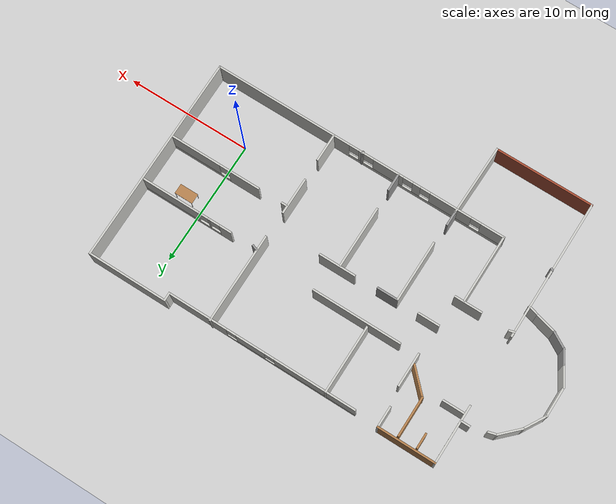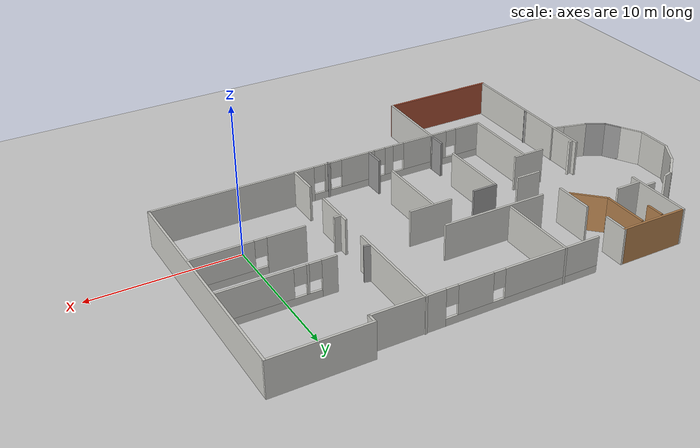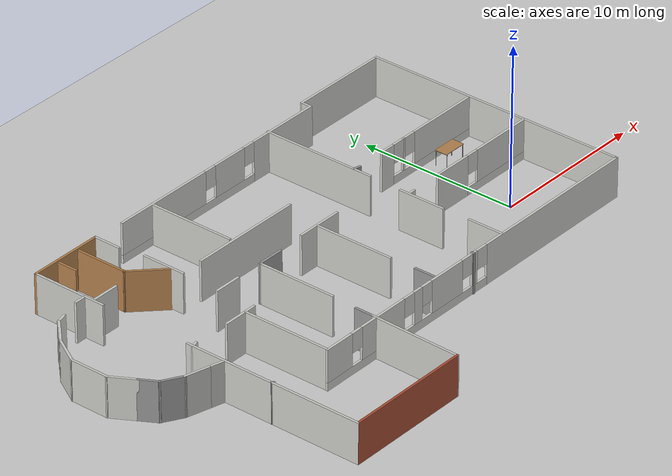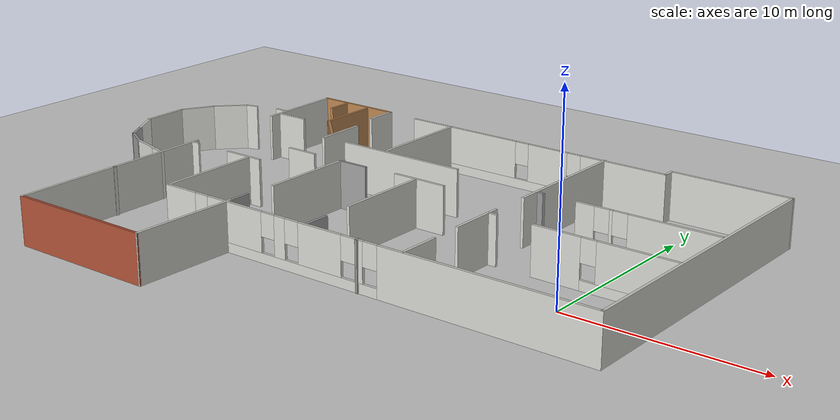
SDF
<sdf version="1.6">
 <world name="default">
  <light name="sun" type="directional">
   <pose>0 0 10 0 -0 0</pose>
   <diffuse>0.8 0.8 0.8 1</diffuse>
   <specular>0.2 0.2 0.2 1</specular>
   <attenuation>
    <range>1000</range>
    <constant>0.9</constant>
    <linear>0.01</linear>
    <quadratic>0.001</quadratic>
   </attenuation>
   <direction>-0.5 0.1 -0.9</direction>
  </light>
  <model name="ground_plane">
   <static>1</static>
   <link name="link">
    <collision name="collision">
     <geometry><plane><normal>0 0 1</normal><size>100 100</size></plane></geometry>
     <surface><friction><ode><mu>100</mu><mu2>50</mu2></ode></friction></surface>
    </collision>
    <visual name="visual">
     <cast_shadows>0</cast_shadows>
     <geometry><plane><normal>0 0 1</normal><size>100 100</size></plane></geometry>
     <material>
      <script><uri>file://media/materials/scripts/gazebo.material</uri><name>Gazebo/Grey</name></script>
     </material>
    </visual>
   </link>
  </model>
  <gravity>0 0 -9.8</gravity>
  <magnetic_field>6e-06 2.3e-05 -4.2e-05</magnetic_field>
  <atmosphere type="adiabatic"/>
  <physics name="default_physics" default="0" type="ode">
   <max_step_size>0.001</max_step_size>
   <real_time_factor>1</real_time_factor>
   <real_time_update_rate>1000</real_time_update_rate>
  </physics>
  <scene><ambient>0.4 0.4 0.4 1</ambient><background>0.7 0.7 0.7 1</background><shadows>1</shadows></scene>
  <spherical_coordinates>
   <surface_model>EARTH_WGS84</surface_model>
   <latitude_deg>0</latitude_deg>
   <longitude_deg>0</longitude_deg>
   <elevation>0</elevation>
   <heading_deg>0</heading_deg>
  </spherical_coordinates>
  <model name="MyHospital">
   <pose>-12.1204 1.93957 0 0 -0 0</pose>
   <link name="Wall_0">
    <collision name="Wall_0_Collision">
     <geometry><box><size>0.16 0.15 2.5</size></box></geometry>
     <pose>0 0 1.25 0 -0 0</pose>
    </collision>
    <visual name="Wall_0_Visual">
     <pose>0 0 1.25 0 -0 0</pose>
     <geometry><box><size>0.16 0.15 2.5</size></box></geometry>
     <material>
      <script><uri>file://media/materials/scripts/gazebo.material</uri><name>Gazebo/Grey</name></script>
      <ambient>1 1 1 1</ambient>
     </material>
     <meta><layer>0</layer></meta>
    </visual>
    <pose>16.5296 -5.60945 0 0 -0 0</pose>
   </link>
   <link name="Wall_1">
    <pose>4.48457 -5.60945 0 0 -0 3.14159</pose>
    <visual name="Wall_1_Visual_0">
     <pose>-6.49021 0 1.25 0 -0 0</pose>
     <geometry><box><size>11.2696 0.15 2.5</size></box></geometry>
     <material>
      <script><uri>file://media/materials/scripts/gazebo.material</uri><name>Gazebo/CeilingTiled</name></script>
      <ambient>1 1 1 1</ambient>
     </material>
     <meta><layer>0</layer></meta>
    </visual>
    <collision name="Wall_1_Collision_0">
     <geometry><box><size>11.2696 0.15 2.5</size></box></geometry>
     <pose>-6.49021 0 1.25 0 -0 0</pose>
    </collision>
    <visual name="Wall_1_Visual_1">
     <pose>5.63479 0 0.25 0 -0 0</pose>
     <geometry><box><size>12.9804 0.15 0.5</size></box></geometry>
     <material>
      <script><uri>file://media/materials/scripts/gazebo.material</uri><name>Gazebo/CeilingTiled</name></script>
      <ambient>1 1 1 1</ambient>
     </material>
     <meta><layer>0</layer></meta>
    </visual>
    <collision name="Wall_1_Collision_1">
     <geometry><box><size>12.9804 0.15 0.5</size></box></geometry>
     <pose>5.63479 0 0.25 0 -0 0</pose>
    </collision>
    <visual name="Wall_1_Visual_2">
     <pose>0.159855 0 1.5 0 -0 0</pose>
     <geometry><box><size>0.430557 0.15 2</size></box></geometry>
     <material>
      <script><uri>file://media/materials/scripts/gazebo.material</uri><name>Gazebo/CeilingTiled</name></script>
      <ambient>1 1 1 1</ambient>
     </material>
     <meta><layer>0</layer></meta>
    </visual>
    <collision name="Wall_1_Collision_2">
     <geometry><box><size>0.430557 0.15 2</size></box></geometry>
     <pose>0.159855 0 1.5 0 -0 0</pose>
    </collision>
    <visual name="Wall_1_Visual_3">
     <pose>2.43371 0 1.5 0 -0 0</pose>
     <geometry><box><size>2.51715 0.15 2</size></box></geometry>
     <material>
      <script><uri>file://media/materials/scripts/gazebo.material</uri><name>Gazebo/CeilingTiled</name></script>
      <ambient>1 1 1 1</ambient>
     </material>
     <meta><layer>0</layer></meta>
    </visual>
    <collision name="Wall_1_Collision_3">
     <geometry><box><size>2.51715 0.15 2</size></box></geometry>
     <pose>2.43371 0 1.5 0 -0 0</pose>
    </collision>
    <visual name="Wall_1_Visual_4">
     <pose>4.81457 0 1.5 0 -0 0</pose>
     <geometry><box><size>0.644567 0.15 2</size></box></geometry>
     <material>
      <script><uri>file://media/materials/scripts/gazebo.material</uri><name>Gazebo/CeilingTiled</name></script>
      <ambient>1 1 1 1</ambient>
     </material>
     <meta><layer>0</layer></meta>
    </visual>
    <collision name="Wall_1_Collision_4">
     <geometry><box><size>0.644567 0.15 2</size></box></geometry>
     <pose>4.81457 0 1.5 0 -0 0</pose>
    </collision>
    <visual name="Wall_1_Visual_5">
     <pose>7.6502 0 1.5 0 -0 0</pose>
     <geometry><box><size>3.4267 0.15 2</size></box></geometry>
     <material>
      <script><uri>file://media/materials/scripts/gazebo.material</uri><name>Gazebo/CeilingTiled</name></script>
      <ambient>1 1 1 1</ambient>
     </material>
     <meta><layer>0</layer></meta>
    </visual>
    <collision name="Wall_1_Collision_5">
     <geometry><box><size>3.4267 0.15 2</size></box></geometry>
     <pose>7.6502 0 1.5 0 -0 0</pose>
    </collision>
    <visual name="Wall_1_Visual_6">
     <pose>11.1443 0 1.5 0 -0 0</pose>
     <geometry><box><size>1.96145 0.15 2</size></box></geometry>
     <material>
      <script><uri>file://media/materials/scripts/gazebo.material</uri><name>Gazebo/CeilingTiled</name></script>
      <ambient>1 1 1 1</ambient>
     </material>
     <meta><layer>0</layer></meta>
    </visual>
    <collision name="Wall_1_Collision_6">
     <geometry><box><size>1.96145 0.15 2</size></box></geometry>
     <pose>11.1443 0 1.5 0 -0 0</pose>
    </collision>
    <visual name="Wall_1_Visual_7">
     <pose>-0.455423 0 1.9 0 -0 0</pose>
     <geometry><box><size>0.8 0.15 1.2</size></box></geometry>
     <material>
      <script><uri>file://media/materials/scripts/gazebo.material</uri><name>Gazebo/CeilingTiled</name></script>
      <ambient>1 1 1 1</ambient>
     </material>
     <meta><layer>0</layer></meta>
    </visual>
    <collision name="Wall_1_Collision_7">
     <geometry><box><size>0.8 0.15 1.2</size></box></geometry>
     <pose>-0.455423 0 1.9 0 -0 0</pose>
    </collision>
    <visual name="Wall_1_Visual_8">
     <pose>0.775134 0 1.9 0 -0 0</pose>
     <geometry><box><size>0.8 0.15 1.2</size></box></geometry>
     <material>
      <script><uri>file://media/materials/scripts/gazebo.material</uri><name>Gazebo/CeilingTiled</name></script>
      <ambient>1 1 1 1</ambient>
     </material>
     <meta><layer>0</layer></meta>
    </visual>
    <collision name="Wall_1_Collision_8">
     <geometry><box><size>0.8 0.15 1.2</size></box></geometry>
     <pose>0.775134 0 1.9 0 -0 0</pose>
    </collision>
    <visual name="Wall_1_Visual_9">
     <pose>4.09229 0 1.9 0 -0 0</pose>
     <geometry><box><size>0.8 0.15 1.2</size></box></geometry>
     <material>
      <script><uri>file://media/materials/scripts/gazebo.material</uri><name>Gazebo/CeilingTiled</name></script>
      <ambient>1 1 1 1</ambient>
     </material>
     <meta><layer>0</layer></meta>
    </visual>
    <collision name="Wall_1_Collision_9">
     <geometry><box><size>0.8 0.15 1.2</size></box></geometry>
     <pose>4.09229 0 1.9 0 -0 0</pose>
    </collision>
    <visual name="Wall_1_Visual_10">
     <pose>5.53686 0 1.9 0 -0 0</pose>
     <geometry><box><size>0.8 0.15 1.2</size></box></geometry>
     <material>
      <script><uri>file://media/materials/scripts/gazebo.material</uri><name>Gazebo/CeilingTiled</name></script>
      <ambient>1 1 1 1</ambient>
     </material>
     <meta><layer>0</layer></meta>
    </visual>
    <collision name="Wall_1_Collision_10">
     <geometry><box><size>0.8 0.15 1.2</size></box></geometry>
     <pose>5.53686 0 1.9 0 -0 0</pose>
    </collision>
    <visual name="Wall_1_Visual_11">
     <pose>9.76355 0 1.9 0 -0 0</pose>
     <geometry><box><size>0.8 0.15 1.2</size></box></geometry>
     <material>
      <script><uri>file://media/materials/scripts/gazebo.material</uri><name>Gazebo/CeilingTiled</name></script>
      <ambient>1 1 1 1</ambient>
     </material>
     <meta><layer>0</layer></meta>
    </visual>
    <collision name="Wall_1_Collision_11">
     <geometry><box><size>0.8 0.15 1.2</size></box></geometry>
     <pose>9.76355 0 1.9 0 -0 0</pose>
    </collision>
   </link>
   <link name="Wall_14">
    <collision name="Wall_14_Collision">
     <geometry><box><size>5.5 0.15 2.5</size></box></geometry>
     <pose>0 0 1.25 0 -0 0</pose>
    </collision>
    <visual name="Wall_14_Visual">
     <pose>0 0 1.25 0 -0 0</pose>
     <geometry><box><size>5.5 0.15 2.5</size></box></geometry>
     <material>
      <script><uri>file://media/materials/scripts/gazebo.material</uri><name>Gazebo/CeilingTiled</name></script>
      <ambient>1 1 1 1</ambient>
     </material>
     <meta><layer>0</layer></meta>
    </visual>
    <pose>-7.54648 -2.8414 0 0 -0 1.5708</pose>
   </link>
   <link name="Wall_16">
    <collision name="Wall_16_Collision">
     <geometry><box><size>2.25 0.15 2.5</size></box></geometry>
     <pose>0 0 1.25 0 -0 0</pose>
    </collision>
    <visual name="Wall_16_Visual">
     <pose>0 0 1.25 0 -0 0</pose>
     <geometry><box><size>2.25 0.15 2.5</size></box></geometry>
     <material>
      <script><uri>file://media/materials/scripts/gazebo.material</uri><name>Gazebo/CeilingTiled</name></script>
      <ambient>1 1 1 1</ambient>
     </material>
     <meta><layer>0</layer></meta>
    </visual>
    <pose>-7.92696 -0.119625 0 0 -0 3.14159</pose>
   </link>
   <link name="Wall_18">
    <collision name="Wall_18_Collision">
     <geometry><box><size>2.25 0.15 2.5</size></box></geometry>
     <pose>0 0 1.25 0 -0 0</pose>
    </collision>
    <visual name="Wall_18_Visual">
     <pose>0 0 1.25 0 -0 0</pose>
     <geometry><box><size>2.25 0.15 2.5</size></box></geometry>
     <material>
      <script><uri>file://media/materials/scripts/gazebo.material</uri><name>Gazebo/CeilingTiled</name></script>
      <ambient>1 1 1 1</ambient>
     </material>
     <meta><layer>0</layer></meta>
    </visual>
    <pose>6.68381 -4.49275 0 0 -0 1.5708</pose>
   </link>
   <link name="Wall_20">
    <collision name="Wall_20_Collision">
     <geometry><box><size>3 0.15 2.5</size></box></geometry>
     <pose>0 0 1.25 0 -0 0</pose>
    </collision>
    <visual name="Wall_20_Visual">
     <pose>0 0 1.25 0 -0 0</pose>
     <geometry><box><size>3 0.15 2.5</size></box></geometry>
     <material>
      <script><uri>file://media/materials/scripts/gazebo.material</uri><name>Gazebo/CeilingTiled</name></script>
      <ambient>1 1 1 1</ambient>
     </material>
     <meta><layer>0</layer></meta>
    </visual>
    <pose>6.64336 -0.234016 0 0 -0 1.5708</pose>
   </link>
   <link name="Wall_22">
    <collision name="Wall_22_Collision">
     <geometry><box><size>0.5 0.15 2.5</size></box></geometry>
     <pose>0 0 1.25 0 -0 0</pose>
    </collision>
    <visual name="Wall_22_Visual">
     <pose>0 0 1.25 0 -0 0</pose>
     <geometry><box><size>0.5 0.15 2.5</size></box></geometry>
     <material>
      <script><uri>file://media/materials/scripts/gazebo.material</uri><name>Gazebo/CeilingTiled</name></script>
      <ambient>1 1 1 1</ambient>
     </material>
     <meta><layer>0</layer></meta>
    </visual>
    <pose>6.89927 0.646952 0 0 -0 0</pose>
   </link>
   <link name="Wall_26">
    <pose>12.7912 0.646952 0 0 -0 0</pose>
    <visual name="Wall_26_Visual_0">
     <pose>-2.46946 0 1.25 0 -0 0</pose>
     <geometry><box><size>2.56108 0.15 2.5</size></box></geometry>
     <material>
      <script><uri>file://media/materials/scripts/gazebo.material</uri><name>Gazebo/CeilingTiled</name></script>
      <ambient>1 1 1 1</ambient>
     </material>
     <meta><layer>0</layer></meta>
    </visual>
    <collision name="Wall_26_Collision_0">
     <geometry><box><size>2.56108 0.15 2.5</size></box></geometry>
     <pose>-2.46946 0 1.25 0 -0 0</pose>
    </collision>
    <visual name="Wall_26_Visual_1">
     <pose>1.28054 0 0.25 0 -0 0</pose>
     <geometry><box><size>4.93892 0.15 0.5</size></box></geometry>
     <material>
      <script><uri>file://media/materials/scripts/gazebo.material</uri><name>Gazebo/CeilingTiled</name></script>
      <ambient>1 1 1 1</ambient>
     </material>
     <meta><layer>0</layer></meta>
    </visual>
    <collision name="Wall_26_Collision_1">
     <geometry><box><size>4.93892 0.15 0.5</size></box></geometry>
     <pose>1.28054 0 0.25 0 -0 0</pose>
    </collision>
    <visual name="Wall_26_Visual_2">
     <pose>1.68054 0 1.5 0 -0 0</pose>
     <geometry><box><size>4.13892 0.15 2</size></box></geometry>
     <material>
      <script><uri>file://media/materials/scripts/gazebo.material</uri><name>Gazebo/CeilingTiled</name></script>
      <ambient>1 1 1 1</ambient>
     </material>
     <meta><layer>0</layer></meta>
    </visual>
    <collision name="Wall_26_Collision_2">
     <geometry><box><size>4.13892 0.15 2</size></box></geometry>
     <pose>1.68054 0 1.5 0 -0 0</pose>
    </collision>
    <visual name="Wall_26_Visual_3">
     <pose>-0.788924 0 1.9 0 -0 0</pose>
     <geometry><box><size>0.8 0.15 1.2</size></box></geometry>
     <material>
      <script><uri>file://media/materials/scripts/gazebo.material</uri><name>Gazebo/CeilingTiled</name></script>
      <ambient>1 1 1 1</ambient>
     </material>
     <meta><layer>0</layer></meta>
    </visual>
    <collision name="Wall_26_Collision_3">
     <geometry><box><size>0.8 0.15 1.2</size></box></geometry>
     <pose>-0.788924 0 1.9 0 -0 0</pose>
    </collision>
   </link>
   <link name="Wall_28">
    <collision name="Wall_28_Collision">
     <geometry><box><size>16.75 0.15 2.5</size></box></geometry>
     <pose>0 0 1.25 0 -0 0</pose>
    </collision>
    <visual name="Wall_28_Visual">
     <pose>0 0 1.25 0 -0 0</pose>
     <geometry><box><size>16.75 0.15 2.5</size></box></geometry>
     <material>
      <script><uri>file://media/materials/scripts/gazebo.material</uri><name>Gazebo/CeilingTiled</name></script>
      <ambient>1 1 1 1</ambient>
     </material>
     <meta><layer>0</layer></meta>
    </visual>
    <pose>16.5346 2.69055 0 0 -0 1.5708</pose>
   </link>
   <link name="Wall_29">
    <collision name="Wall_29_Collision">
     <geometry><box><size>6.5 0.15 2.5</size></box></geometry>
     <pose>0 0 1.25 0 -0 0</pose>
    </collision>
    <visual name="Wall_29_Visual">
     <pose>0 0 1.25 0 -0 0</pose>
     <geometry><box><size>6.5 0.15 2.5</size></box></geometry>
     <material>
      <script><uri>file://media/materials/scripts/gazebo.material</uri><name>Gazebo/CeilingTiled</name></script>
      <ambient>1 1 1 1</ambient>
     </material>
     <meta><layer>0</layer></meta>
    </visual>
    <pose>13.3596 10.9906 0 0 -0 3.14159</pose>
   </link>
   <link name="Wall_30">
    <collision name="Wall_30_Collision">
     <geometry><box><size>0.75 0.15 2.5</size></box></geometry>
     <pose>0 0 1.25 0 -0 0</pose>
    </collision>
    <visual name="Wall_30_Visual">
     <pose>0 0 1.25 0 -0 0</pose>
     <geometry><box><size>0.75 0.15 2.5</size></box></geometry>
     <material>
      <script><uri>file://media/materials/scripts/gazebo.material</uri><name>Gazebo/CeilingTiled</name></script>
      <ambient>1 1 1 1</ambient>
     </material>
     <meta><layer>0</layer></meta>
    </visual>
    <pose>10.1846 10.6906 0 0 0 -1.5708</pose>
   </link>
   <link name="Wall_31">
    <pose>2.50957 10.3906 0 0 -0 3.14159</pose>
    <visual name="Wall_31_Visual_0">
     <pose>-5.31696 0 1.25 0 -0 0</pose>
     <geometry><box><size>4.86607 0.15 2.5</size></box></geometry>
     <material>
      <script><uri>file://media/materials/scripts/gazebo.material</uri><name>Gazebo/CeilingTiled</name></script>
      <ambient>1 1 1 1</ambient>
     </material>
     <meta><layer>0</layer></meta>
    </visual>
    <collision name="Wall_31_Collision_0">
     <geometry><box><size>4.86607 0.15 2.5</size></box></geometry>
     <pose>-5.31696 0 1.25 0 -0 0</pose>
    </collision>
    <visual name="Wall_31_Visual_1">
     <pose>2.43304 0 0.25 0 -0 0</pose>
     <geometry><box><size>10.6339 0.15 0.5</size></box></geometry>
     <material>
      <script><uri>file://media/materials/scripts/gazebo.material</uri><name>Gazebo/CeilingTiled</name></script>
      <ambient>1 1 1 1</ambient>
     </material>
     <meta><layer>0</layer></meta>
    </visual>
    <collision name="Wall_31_Collision_1">
     <geometry><box><size>10.6339 0.15 0.5</size></box></geometry>
     <pose>2.43304 0 0.25 0 -0 0</pose>
    </collision>
    <visual name="Wall_31_Visual_2">
     <pose>-0.905602 0 1.5 0 -0 0</pose>
     <geometry><box><size>2.35665 0.15 2</size></box></geometry>
     <material>
      <script><uri>file://media/materials/scripts/gazebo.material</uri><name>Gazebo/CeilingTiled</name></script>
      <ambient>1 1 1 1</ambient>
     </material>
     <meta><layer>0</layer></meta>
    </visual>
    <collision name="Wall_31_Collision_2">
     <geometry><box><size>2.35665 0.15 2</size></box></geometry>
     <pose>-0.905602 0 1.5 0 -0 0</pose>
    </collision>
    <visual name="Wall_31_Visual_3">
     <pose>4.41136 0 1.5 0 -0 0</pose>
     <geometry><box><size>6.67728 0.15 2</size></box></geometry>
     <material>
      <script><uri>file://media/materials/scripts/gazebo.material</uri><name>Gazebo/CeilingTiled</name></script>
      <ambient>1 1 1 1</ambient>
     </material>
     <meta><layer>0</layer></meta>
    </visual>
    <collision name="Wall_31_Collision_3">
     <geometry><box><size>6.67728 0.15 2</size></box></geometry>
     <pose>4.41136 0 1.5 0 -0 0</pose>
    </collision>
    <visual name="Wall_31_Visual_4">
     <pose>-2.48393 0 1.9 0 -0 0</pose>
     <geometry><box><size>0.8 0.15 1.2</size></box></geometry>
     <material>
      <script><uri>file://media/materials/scripts/gazebo.material</uri><name>Gazebo/CeilingTiled</name></script>
      <ambient>1 1 1 1</ambient>
     </material>
     <meta><layer>0</layer></meta>
    </visual>
    <collision name="Wall_31_Collision_4">
     <geometry><box><size>0.8 0.15 1.2</size></box></geometry>
     <pose>-2.48393 0 1.9 0 -0 0</pose>
    </collision>
    <visual name="Wall_31_Visual_5">
     <pose>0.672721 0 1.9 0 -0 0</pose>
     <geometry><box><size>0.8 0.15 1.2</size></box></geometry>
     <material>
      <script><uri>file://media/materials/scripts/gazebo.material</uri><name>Gazebo/CeilingTiled</name></script>
      <ambient>1 1 1 1</ambient>
     </material>
     <meta><layer>0</layer></meta>
    </visual>
    <collision name="Wall_31_Collision_5">
     <geometry><box><size>0.8 0.15 1.2</size></box></geometry>
     <pose>0.672721 0 1.9 0 -0 0</pose>
    </collision>
   </link>
   <link name="Wall_33">
    <collision name="Wall_33_Collision">
     <geometry><box><size>7.25 0.15 2.5</size></box></geometry>
     <pose>0 0 1.25 0 -0 0</pose>
    </collision>
    <visual name="Wall_33_Visual">
     <pose>0 0 1.25 0 -0 0</pose>
     <geometry><box><size>7.25 0.15 2.5</size></box></geometry>
     <material>
      <script><uri>file://media/materials/scripts/gazebo.material</uri><name>Gazebo/CeilingTiled</name></script>
      <ambient>1 1 1 1</ambient>
     </material>
     <meta><layer>0</layer></meta>
    </visual>
    <pose>6.71211 6.90831 0 0 0 -1.5708</pose>
   </link>
   <link name="Wall_35">
    <collision name="Wall_35_Collision">
     <geometry><box><size>0.5 0.15 2.5</size></box></geometry>
     <pose>0 0 1.25 0 -0 0</pose>
    </collision>
    <visual name="Wall_35_Visual">
     <pose>0 0 1.25 0 -0 0</pose>
     <geometry><box><size>0.5 0.15 2.5</size></box></geometry>
     <material>
      <script><uri>file://media/materials/scripts/gazebo.material</uri><name>Gazebo/Grey</name></script>
      <ambient>1 1 1 1</ambient>
     </material>
     <meta><layer>0</layer></meta>
    </visual>
    <pose>6.93465 4.42074 0 0 0 -0.261799</pose>
   </link>
   <link name="Wall_39">
    <pose>12.6839 4.41253 0 0 -0 0</pose>
    <visual name="Wall_39_Visual_0">
     <pose>-3.24505 0 1.25 0 -0 0</pose>
     <geometry><box><size>1.00989 0.15 2.5</size></box></geometry>
     <material>
      <script><uri>file://media/materials/scripts/gazebo.material</uri><name>Gazebo/CeilingTiled</name></script>
      <ambient>1 1 1 1</ambient>
     </material>
     <meta><layer>0</layer></meta>
    </visual>
    <collision name="Wall_39_Collision_0">
     <geometry><box><size>1.00989 0.15 2.5</size></box></geometry>
     <pose>-3.24505 0 1.25 0 -0 0</pose>
    </collision>
    <visual name="Wall_39_Visual_1">
     <pose>0.504947 0 0.25 0 -0 0</pose>
     <geometry><box><size>6.49011 0.15 0.5</size></box></geometry>
     <material>
      <script><uri>file://media/materials/scripts/gazebo.material</uri><name>Gazebo/CeilingTiled</name></script>
      <ambient>1 1 1 1</ambient>
     </material>
     <meta><layer>0</layer></meta>
    </visual>
    <collision name="Wall_39_Collision_1">
     <geometry><box><size>6.49011 0.15 0.5</size></box></geometry>
     <pose>0.504947 0 0.25 0 -0 0</pose>
    </collision>
    <visual name="Wall_39_Visual_2">
     <pose>-1.85858 0 1.5 0 -0 0</pose>
     <geometry><box><size>0.163045 0.15 2</size></box></geometry>
     <material>
      <script><uri>file://media/materials/scripts/gazebo.material</uri><name>Gazebo/CeilingTiled</name></script>
      <ambient>1 1 1 1</ambient>
     </material>
     <meta><layer>0</layer></meta>
    </visual>
    <collision name="Wall_39_Collision_2">
     <geometry><box><size>0.163045 0.15 2</size></box></geometry>
     <pose>-1.85858 0 1.5 0 -0 0</pose>
    </collision>
    <visual name="Wall_39_Visual_3">
     <pose>1.38647 0 1.5 0 -0 0</pose>
     <geometry><box><size>4.72706 0.15 2</size></box></geometry>
     <material>
      <script><uri>file://media/materials/scripts/gazebo.material</uri><name>Gazebo/CeilingTiled</name></script>
      <ambient>1 1 1 1</ambient>
     </material>
     <meta><layer>0</layer></meta>
    </visual>
    <collision name="Wall_39_Collision_3">
     <geometry><box><size>4.72706 0.15 2</size></box></geometry>
     <pose>1.38647 0 1.5 0 -0 0</pose>
    </collision>
    <visual name="Wall_39_Visual_4">
     <pose>-2.34011 0 1.9 0 -0 0</pose>
     <geometry><box><size>0.8 0.15 1.2</size></box></geometry>
     <material>
      <script><uri>file://media/materials/scripts/gazebo.material</uri><name>Gazebo/CeilingTiled</name></script>
      <ambient>1 1 1 1</ambient>
     </material>
     <meta><layer>0</layer></meta>
    </visual>
    <collision name="Wall_39_Collision_4">
     <geometry><box><size>0.8 0.15 1.2</size></box></geometry>
     <pose>-2.34011 0 1.9 0 -0 0</pose>
    </collision>
    <visual name="Wall_39_Visual_5">
     <pose>-1.37706 0 1.9 0 -0 0</pose>
     <geometry><box><size>0.8 0.15 1.2</size></box></geometry>
     <material>
      <script><uri>file://media/materials/scripts/gazebo.material</uri><name>Gazebo/CeilingTiled</name></script>
      <ambient>1 1 1 1</ambient>
     </material>
     <meta><layer>0</layer></meta>
    </visual>
    <collision name="Wall_39_Collision_5">
     <geometry><box><size>0.8 0.15 1.2</size></box></geometry>
     <pose>-1.37706 0 1.9 0 -0 0</pose>
    </collision>
   </link>
   <link name="Wall_4">
    <collision name="Wall_4_Collision">
     <geometry><box><size>0.25 0.15 2.5</size></box></geometry>
     <pose>0 0 1.25 0 -0 0</pose>
    </collision>
    <visual name="Wall_4_Visual">
     <pose>0 0 1.25 0 -0 0</pose>
     <geometry><box><size>0.25 0.15 2.5</size></box></geometry>
     <material>
      <script><uri>file://media/materials/scripts/gazebo.material</uri><name>Gazebo/Grey</name></script>
      <ambient>1 1 1 1</ambient>
     </material>
     <meta><layer>0</layer></meta>
    </visual>
    <pose>4.25151 -5.61122 0 0 0 -1.8326</pose>
   </link>
   <link name="Wall_41">
    <collision name="Wall_41_Collision">
     <geometry><box><size>7.25 0.15 2.5</size></box></geometry>
     <pose>0 0 1.25 0 -0 0</pose>
    </collision>
    <visual name="Wall_41_Visual">
     <pose>0 0 1.25 0 -0 0</pose>
     <geometry><box><size>7.25 0.15 2.5</size></box></geometry>
     <material>
      <script><uri>file://media/materials/scripts/gazebo.material</uri><name>Gazebo/CeilingTiled</name></script>
      <ambient>1 1 1 1</ambient>
     </material>
     <meta><layer>0</layer></meta>
    </visual>
    <pose>-1.77596 4.78705 0 0 -0 0</pose>
   </link>
   <link name="Wall_43">
    <collision name="Wall_43_Collision">
     <geometry><box><size>5.5 0.15 2.5</size></box></geometry>
     <pose>0 0 1.25 0 -0 0</pose>
    </collision>
    <visual name="Wall_43_Visual">
     <pose>0 0 1.25 0 -0 0</pose>
     <geometry><box><size>5.5 0.15 2.5</size></box></geometry>
     <material>
      <script><uri>file://media/materials/scripts/gazebo.material</uri><name>Gazebo/CeilingTiled</name></script>
      <ambient>1 1 1 1</ambient>
     </material>
     <meta><layer>0</layer></meta>
    </visual>
    <pose>-2.79783 7.72503 0 0 0 -1.5708</pose>
   </link>
   <link name="Wall_45">
    <collision name="Wall_45_Collision">
     <geometry><box><size>2.75 0.15 2.5</size></box></geometry>
     <pose>0 0 1.25 0 -0 0</pose>
    </collision>
    <visual name="Wall_45_Visual">
     <pose>0 0 1.25 0 -0 0</pose>
     <geometry><box><size>2.75 0.15 2.5</size></box></geometry>
     <material>
      <script><uri>file://media/materials/scripts/gazebo.material</uri><name>Gazebo/CeilingTiled</name></script>
      <ambient>1 1 1 1</ambient>
     </material>
     <meta><layer>0</layer></meta>
    </visual>
    <pose>-6.83098 6.03947 0 0 -0 1.5708</pose>
   </link>
   <link name="Wall_47">
    <collision name="Wall_47_Collision">
     <geometry><box><size>2.5 0.15 2.5</size></box></geometry>
     <pose>0 0 1.25 0 -0 0</pose>
    </collision>
    <visual name="Wall_47_Visual">
     <pose>0 0 1.25 0 -0 0</pose>
     <geometry><box><size>2.5 0.15 2.5</size></box></geometry>
     <material>
      <script><uri>file://media/materials/scripts/gazebo.material</uri><name>Gazebo/Wood</name></script>
      <ambient>1 1 1 1</ambient>
     </material>
     <meta><layer>0</layer></meta>
    </visual>
    <pose>-7.80335 6.34864 0 0 -0 2.35619</pose>
   </link>
   <link name="Wall_48">
    <collision name="Wall_48_Collision">
     <geometry><box><size>3.25 0.15 2.5</size></box></geometry>
     <pose>0 0 1.25 0 -0 0</pose>
    </collision>
    <visual name="Wall_48_Visual">
     <pose>0 0 1.25 0 -0 0</pose>
     <geometry><box><size>3.25 0.15 2.5</size></box></geometry>
     <material>
      <script><uri>file://media/materials/scripts/gazebo.material</uri><name>Gazebo/Wood</name></script>
      <ambient>1 1 1 1</ambient>
     </material>
     <meta><layer>0</layer></meta>
    </visual>
    <pose>-8.6342 8.7295 0 0 -0 1.5708</pose>
   </link>
   <link name="Wall_50">
    <collision name="Wall_50_Collision">
     <geometry><box><size>4.75 0.15 2.5</size></box></geometry>
     <pose>0 0 1.25 0 -0 0</pose>
    </collision>
    <visual name="Wall_50_Visual">
     <pose>0 0 1.25 0 -0 0</pose>
     <geometry><box><size>4.75 0.15 2.5</size></box></geometry>
     <material>
      <script><uri>file://media/materials/scripts/gazebo.material</uri><name>Gazebo/Wood</name></script>
      <ambient>1 1 1 1</ambient>
     </material>
     <meta><layer>0</layer></meta>
    </visual>
    <pose>-9.41322 10.5415 0 0 -0 0</pose>
   </link>
   <link name="Wall_51">
    <collision name="Wall_51_Collision">
     <geometry><box><size>1.75 0.15 2.5</size></box></geometry>
     <pose>0 0 1.25 0 -0 0</pose>
    </collision>
    <visual name="Wall_51_Visual">
     <pose>0 0 1.25 0 -0 0</pose>
     <geometry><box><size>1.75 0.15 2.5</size></box></geometry>
     <material>
      <script><uri>file://media/materials/scripts/gazebo.material</uri><name>Gazebo/CeilingTiled</name></script>
      <ambient>1 1 1 1</ambient>
     </material>
     <meta><layer>0</layer></meta>
    </visual>
    <pose>-7.11322 9.74155 0 0 0 -1.5708</pose>
   </link>
   <link name="Wall_53">
    <collision name="Wall_53_Collision">
     <geometry><box><size>4.75 0.15 2.5</size></box></geometry>
     <pose>0 0 1.25 0 -0 0</pose>
    </collision>
    <visual name="Wall_53_Visual">
     <pose>0 0 1.25 0 -0 0</pose>
     <geometry><box><size>4.75 0.15 2.5</size></box></geometry>
     <material>
      <script><uri>file://media/materials/scripts/gazebo.material</uri><name>Gazebo/CeilingTiled</name></script>
      <ambient>1 1 1 1</ambient>
     </material>
     <meta><layer>0</layer></meta>
    </visual>
    <pose>-11.7132 8.24155 0 0 0 -1.5708</pose>
   </link>
   <link name="Wall_55">
    <collision name="Wall_55_Collision">
     <geometry><box><size>1.75 0.15 2.5</size></box></geometry>
     <pose>0 0 1.25 0 -0 0</pose>
    </collision>
    <visual name="Wall_55_Visual">
     <pose>0 0 1.25 0 -0 0</pose>
     <geometry><box><size>1.75 0.15 2.5</size></box></geometry>
     <material>
      <script><uri>file://media/materials/scripts/gazebo.material</uri><name>Gazebo/CeilingTiled</name></script>
      <ambient>1 1 1 1</ambient>
     </material>
     <meta><layer>0</layer></meta>
    </visual>
    <pose>-10.7717 6.57915 0 0 -0 0</pose>
   </link>
   <link name="Wall_57">
    <collision name="Wall_57_Collision">
     <geometry><box><size>0.75 0.15 2.5</size></box></geometry>
     <pose>0 0 1.25 0 -0 0</pose>
    </collision>
    <visual name="Wall_57_Visual">
     <pose>0 0 1.25 0 -0 0</pose>
     <geometry><box><size>0.75 0.15 2.5</size></box></geometry>
     <material>
      <script><uri>file://media/materials/scripts/gazebo.material</uri><name>Gazebo/CeilingTiled</name></script>
      <ambient>1 1 1 1</ambient>
     </material>
     <meta><layer>0</layer></meta>
    </visual>
    <pose>-12.084 7.14521 0 0 -0 3.14159</pose>
   </link>
   <link name="Wall_59">
    <collision name="Wall_59_Collision">
     <geometry><box><size>0.75 0.15 2.5</size></box></geometry>
     <pose>0 0 1.25 0 -0 0</pose>
    </collision>
    <visual name="Wall_59_Visual">
     <pose>0 0 1.25 0 -0 0</pose>
     <geometry><box><size>0.75 0.15 2.5</size></box></geometry>
     <material>
      <script><uri>file://media/materials/scripts/gazebo.material</uri><name>Gazebo/CeilingTiled</name></script>
      <ambient>1 1 1 1</ambient>
     </material>
     <meta><layer>0</layer></meta>
    </visual>
    <pose>-13.9842 6.71378 0 0 0 -2.87979</pose>
   </link>
   <link name="Wall_60">
    <collision name="Wall_60_Collision">
     <geometry><box><size>2 0.15 2.5</size></box></geometry>
     <pose>0 0 1.25 0 -0 0</pose>
    </collision>
    <visual name="Wall_60_Visual">
     <pose>0 0 1.25 0 -0 0</pose>
     <geometry><box><size>2 0.15 2.5</size></box></geometry>
     <material>
      <script><uri>file://media/materials/scripts/gazebo.material</uri><name>Gazebo/CeilingTiled</name></script>
      <ambient>1 1 1 1</ambient>
     </material>
     <meta><layer>0</layer></meta>
    </visual>
    <pose>-14.928 5.98206 0 0 0 -2.35619</pose>
   </link>
   <link name="Wall_61">
    <collision name="Wall_61_Collision">
     <geometry><box><size>2 0.15 2.5</size></box></geometry>
     <pose>0 0 1.25 0 -0 0</pose>
    </collision>
    <visual name="Wall_61_Visual">
     <pose>0 0 1.25 0 -0 0</pose>
     <geometry><box><size>2 0.15 2.5</size></box></geometry>
     <material>
      <script><uri>file://media/materials/scripts/gazebo.material</uri><name>Gazebo/CeilingTiled</name></script>
      <ambient>1 1 1 1</ambient>
     </material>
     <meta><layer>0</layer></meta>
    </visual>
    <pose>-16.0446 4.52691 0 0 0 -2.0944</pose>
   </link>
   <link name="Wall_62">
    <collision name="Wall_62_Collision">
     <geometry><box><size>2.5 0.15 2.5</size></box></geometry>
     <pose>0 0 1.25 0 -0 0</pose>
    </collision>
    <visual name="Wall_62_Visual">
     <pose>0 0 1.25 0 -0 0</pose>
     <geometry><box><size>2.5 0.15 2.5</size></box></geometry>
     <material>
      <script><uri>file://media/materials/scripts/gazebo.material</uri><name>Gazebo/CeilingTiled</name></script>
      <ambient>1 1 1 1</ambient>
     </material>
     <meta><layer>0</layer></meta>
    </visual>
    <pose>-16.5071 2.55084 0 0 0 -1.5708</pose>
   </link>
   <link name="Wall_63">
    <collision name="Wall_63_Collision">
     <geometry><box><size>1.75 0.15 2.5</size></box></geometry>
     <pose>0 0 1.25 0 -0 0</pose>
    </collision>
    <visual name="Wall_63_Visual">
     <pose>0 0 1.25 0 -0 0</pose>
     <geometry><box><size>1.75 0.15 2.5</size></box></geometry>
     <material>
      <script><uri>file://media/materials/scripts/gazebo.material</uri><name>Gazebo/CeilingTiled</name></script>
      <ambient>1 1 1 1</ambient>
     </material>
     <meta><layer>0</layer></meta>
    </visual>
    <pose>-16.1071 0.683015 0 0 0 -1.0472</pose>
   </link>
   <link name="Wall_64">
    <collision name="Wall_64_Collision">
     <geometry><box><size>1.25 0.15 2.5</size></box></geometry>
     <pose>0 0 1.25 0 -0 0</pose>
    </collision>
    <visual name="Wall_64_Visual">
     <pose>0 0 1.25 0 -0 0</pose>
     <geometry><box><size>1.25 0.15 2.5</size></box></geometry>
     <material>
      <script><uri>file://media/materials/scripts/gazebo.material</uri><name>Gazebo/Grey</name></script>
      <ambient>1 1 1 1</ambient>
     </material>
     <meta><layer>0</layer></meta>
    </visual>
    <pose>-15.4321 -0.48612 0 0 0 -1.0472</pose>
   </link>
   <link name="Wall_65">
    <collision name="Wall_65_Collision">
     <geometry><box><size>1.5 0.15 2.5</size></box></geometry>
     <pose>0 0 1.25 0 -0 0</pose>
    </collision>
    <visual name="Wall_65_Visual">
     <pose>0 0 1.25 0 -0 0</pose>
     <geometry><box><size>1.5 0.15 2.5</size></box></geometry>
     <material>
      <script><uri>file://media/materials/scripts/gazebo.material</uri><name>Gazebo/Grey</name></script>
      <ambient>1 1 1 1</ambient>
     </material>
     <meta><layer>0</layer></meta>
    </visual>
    <pose>-14.5726 -1.29993 0 0 0 -0.523599</pose>
   </link>
   <link name="Wall_66">
    <collision name="Wall_66_Collision">
     <geometry><box><size>1.75 0.15 2.5</size></box></geometry>
     <pose>0 0 1.25 0 -0 0</pose>
    </collision>
    <visual name="Wall_66_Visual">
     <pose>0 0 1.25 0 -0 0</pose>
     <geometry><box><size>1.75 0.15 2.5</size></box></geometry>
     <material>
      <script><uri>file://media/materials/scripts/gazebo.material</uri><name>Gazebo/CeilingTiled</name></script>
      <ambient>1 1 1 1</ambient>
     </material>
     <meta><layer>0</layer></meta>
    </visual>
    <pose>-13.2152 -1.84449 0 0 0 -0.261799</pose>
   </link>
   <link name="Wall_67">
    <collision name="Wall_67_Collision">
     <geometry><box><size>1 0.15 2.5</size></box></geometry>
     <pose>0 0 1.25 0 -0 0</pose>
    </collision>
    <visual name="Wall_67_Visual">
     <pose>0 0 1.25 0 -0 0</pose>
     <geometry><box><size>1 0.15 2.5</size></box></geometry>
     <material>
      <script><uri>file://media/materials/scripts/gazebo.material</uri><name>Gazebo/CeilingTiled</name></script>
      <ambient>1 1 1 1</ambient>
     </material>
     <meta><layer>0</layer></meta>
    </visual>
    <pose>-12.032 -2.16154 0 0 0 -0.261799</pose>
   </link>
   <link name="Wall_69">
    <collision name="Wall_69_Collision">
     <geometry><box><size>5.75 0.15 2.5</size></box></geometry>
     <pose>0 0 1.25 0 -0 0</pose>
    </collision>
    <visual name="Wall_69_Visual">
     <pose>0 0 1.25 0 -0 0</pose>
     <geometry><box><size>5.75 0.15 2.5</size></box></geometry>
     <material>
      <script><uri>file://media/materials/scripts/gazebo.material</uri><name>Gazebo/CeilingTiled</name></script>
      <ambient>1 1 1 1</ambient>
     </material>
     <meta><layer>0</layer></meta>
    </visual>
    <pose>-11.6425 -2.58899 0 0 0 -1.5708</pose>
   </link>
   <link name="Wall_70">
    <collision name="Wall_70_Collision">
     <geometry><box><size>0.25 0.15 2.5</size></box></geometry>
     <pose>0 0 1.25 0 -0 0</pose>
    </collision>
    <visual name="Wall_70_Visual">
     <pose>0 0 1.25 0 -0 0</pose>
     <geometry><box><size>0.25 0.15 2.5</size></box></geometry>
     <material>
      <script><uri>file://media/materials/scripts/gazebo.material</uri><name>Gazebo/Grey</name></script>
      <ambient>1 1 1 1</ambient>
     </material>
     <meta><layer>0</layer></meta>
    </visual>
    <pose>-11.5992 -5.41399 0 0 0 -0.523599</pose>
   </link>
   <link name="Wall_72">
    <collision name="Wall_72_Collision">
     <geometry><box><size>1.75 0.15 2.5</size></box></geometry>
     <pose>0 0 1.25 0 -0 0</pose>
    </collision>
    <visual name="Wall_72_Visual">
     <pose>0 0 1.25 0 -0 0</pose>
     <geometry><box><size>1.75 0.15 2.5</size></box></geometry>
     <material>
      <script><uri>file://media/materials/scripts/gazebo.material</uri><name>Gazebo/CeilingTiled</name></script>
      <ambient>1 1 1 1</ambient>
     </material>
     <meta><layer>0</layer></meta>
    </visual>
    <pose>-6.13756 2.27258 0 0 -0 0</pose>
   </link>
   <link name="Wall_74">
    <collision name="Wall_74_Collision">
     <geometry><box><size>1.25 0.15 2.5</size></box></geometry>
     <pose>0 0 1.25 0 -0 0</pose>
    </collision>
    <visual name="Wall_74_Visual">
     <pose>0 0 1.25 0 -0 0</pose>
     <geometry><box><size>1.25 0.15 2.5</size></box></geometry>
     <material>
      <script><uri>file://media/materials/scripts/gazebo.material</uri><name>Gazebo/Grey</name></script>
      <ambient>1 1 1 1</ambient>
     </material>
     <meta><layer>0</layer></meta>
    </visual>
    <pose>-3.67391 -4.82828 0 0 -0 1.5708</pose>
   </link>
   <link name="Wall_76">
    <collision name="Wall_76_Collision">
     <geometry><box><size>5 0.15 2.5</size></box></geometry>
     <pose>0 0 1.25 0 -0 0</pose>
    </collision>
    <visual name="Wall_76_Visual">
     <pose>0 0 1.25 0 -0 0</pose>
     <geometry><box><size>5 0.15 2.5</size></box></geometry>
     <material>
      <script><uri>file://media/materials/scripts/gazebo.material</uri><name>Gazebo/CeilingTiled</name></script>
      <ambient>1 1 1 1</ambient>
     </material>
     <meta><layer>0</layer></meta>
    </visual>
    <pose>-3.5669 -0.171152 0 0 -0 1.5708</pose>
   </link>
   <link name="Wall_77">
    <collision name="Wall_77_Collision">
     <geometry><box><size>1.75 0.15 2.5</size></box></geometry>
     <pose>0 0 1.25 0 -0 0</pose>
    </collision>
    <visual name="Wall_77_Visual">
     <pose>0 0 1.25 0 -0 0</pose>
     <geometry><box><size>1.75 0.15 2.5</size></box></geometry>
     <material>
      <script><uri>file://media/materials/scripts/gazebo.material</uri><name>Gazebo/Grey</name></script>
      <ambient>1 1 1 1</ambient>
     </material>
     <meta><layer>0</layer></meta>
    </visual>
    <pose>-2.7669 2.25385 0 0 -0 0</pose>
   </link>
   <link name="Wall_79">
    <collision name="Wall_79_Collision">
     <geometry><box><size>3 0.15 2.5</size></box></geometry>
     <pose>0 0 1.25 0 -0 0</pose>
    </collision>
    <visual name="Wall_79_Visual">
     <pose>0 0 1.25 0 -0 0</pose>
     <geometry><box><size>3 0.15 2.5</size></box></geometry>
     <material>
      <script><uri>file://media/materials/scripts/gazebo.material</uri><name>Gazebo/CeilingTiled</name></script>
      <ambient>1 1 1 1</ambient>
     </material>
     <meta><layer>0</layer></meta>
    </visual>
    <pose>1.33576 2.37958 0 0 -0 0</pose>
   </link>
   <link name="Wall_81">
    <collision name="Wall_81_Collision">
     <geometry><box><size>5 0.15 2.5</size></box></geometry>
     <pose>0 0 1.25 0 -0 0</pose>
    </collision>
    <visual name="Wall_81_Visual">
     <pose>0 0 1.25 0 -0 0</pose>
     <geometry><box><size>5 0.15 2.5</size></box></geometry>
     <material>
      <script><uri>file://media/materials/scripts/gazebo.material</uri><name>Gazebo/CeilingTiled</name></script>
      <ambient>1 1 1 1</ambient>
     </material>
     <meta><layer>0</layer></meta>
    </visual>
    <pose>1.14132 -0.152424 0 0 0 -1.5708</pose>
   </link>
   <link name="Wall_83">
    <collision name="Wall_83_Collision">
     <geometry><box><size>1.41168 0.15 2.5</size></box></geometry>
     <pose>0 0 1.25 0 -0 0</pose>
    </collision>
    <visual name="Wall_83_Visual">
     <pose>0 0 1.25 0 -0 0</pose>
     <geometry><box><size>1.41168 0.15 2.5</size></box></geometry>
     <material>
      <script><uri>file://media/materials/scripts/gazebo.material</uri><name>Gazebo/Grey</name></script>
      <ambient>1 1 1 1</ambient>
     </material>
     <meta><layer>0</layer></meta>
    </visual>
    <pose>1.19742 -4.88556 0 0 0 -1.56668</pose>
   </link>
   <link name="Wall_87">
    <collision name="Wall_87_Collision">
     <geometry><box><size>0.5 0.15 2.5</size></box></geometry>
     <pose>0 0 1.25 0 -0 0</pose>
    </collision>
    <visual name="Wall_87_Visual">
     <pose>0 0 1.25 0 -0 0</pose>
     <geometry><box><size>0.5 0.15 2.5</size></box></geometry>
     <material>
      <script><uri>file://media/materials/scripts/gazebo.material</uri><name>Gazebo/CeilingTiled</name></script>
      <ambient>1 1 1 1</ambient>
     </material>
     <meta><layer>0</layer></meta>
    </visual>
    <pose>-11.4767 -0.089743 0 0 -0 0.261799</pose>
   </link>
   <link name="Wall_89">
    <collision name="Wall_89_Collision">
     <geometry><box><size>5.75 0.15 2.5</size></box></geometry>
     <pose>0 0 1.25 0 -0 0</pose>
    </collision>
    <visual name="Wall_89_Visual">
     <pose>0 0 1.25 0 -0 0</pose>
     <geometry><box><size>5.75 0.15 2.5</size></box></geometry>
     <material>
      <script><uri>file://media/materials/scripts/gazebo.material</uri><name>Gazebo/CeilingTiled</name></script>
      <ambient>1 1 1 1</ambient>
     </material>
     <meta><layer>0</layer></meta>
    </visual>
    <pose>-11.6425 -8.18899 0 0 0 -1.5708</pose>
   </link>
   <link name="Wall_90">
    <collision name="Wall_90_Collision">
     <geometry><box><size>8 0.15 2.5</size></box></geometry>
     <pose>0 0 1.25 0 -0 0</pose>
    </collision>
    <visual name="Wall_90_Visual">
     <pose>0 0 1.25 0 -0 0</pose>
     <geometry><box><size>8 0.15 2.5</size></box></geometry>
     <material>
      <script><uri>file://media/materials/scripts/gazebo.material</uri><name>Gazebo/Bricks</name></script>
      <ambient>1 1 1 1</ambient>
     </material>
     <meta><layer>0</layer></meta>
    </visual>
    <pose>-7.71746 -10.989 0 0 -0 0</pose>
   </link>
   <link name="Wall_91">
    <collision name="Wall_91_Collision">
     <geometry><box><size>5.76196 0.15 2.5</size></box></geometry>
     <pose>0 0 1.25 0 -0 0</pose>
    </collision>
    <visual name="Wall_91_Visual">
     <pose>0 0 1.25 0 -0 0</pose>
     <geometry><box><size>5.76196 0.15 2.5</size></box></geometry>
     <material>
      <script><uri>file://media/materials/scripts/gazebo.material</uri><name>Gazebo/CeilingTiled</name></script>
      <ambient>1 1 1 1</ambient>
     </material>
     <meta><layer>0</layer></meta>
    </visual>
    <pose>-3.73319 -8.18363 0 0 -0 1.54967</pose>
   </link>
   <link name="Wall_93">
    <collision name="Wall_93_Collision">
     <geometry><box><size>1.25 0.15 2.5</size></box></geometry>
     <pose>0 0 1.25 0 -0 0</pose>
    </collision>
    <visual name="Wall_93_Visual">
     <pose>0 0 1.25 0 -0 0</pose>
     <geometry><box><size>1.25 0.15 2.5</size></box></geometry>
     <material>
      <script><uri>file://media/materials/scripts/gazebo.material</uri><name>Gazebo/Wood</name></script>
      <ambient>1 1 1 1</ambient>
     </material>
     <meta><layer>0</layer></meta>
    </visual>
    <pose>-10.1477 9.74795 0 0 0 -1.5708</pose>
   </link>
   <static>1</static>
  </model>
  <model name="table">
   <static>1</static>
   <link name="link">
    <collision name="surface">
     <pose>0 0 1 0 -0 0</pose>
     <geometry><box><size>1.5 0.8 0.03</size></box></geometry>
     <surface><friction><ode><mu>0.6</mu><mu2>0.6</mu2></ode></friction></surface>
    </collision>
    <visual name="visual1">
     <pose>0 0 1 0 -0 0</pose>
     <geometry><box><size>1.5 0.8 0.03</size></box></geometry>
     <material>
      <script><uri>file://media/materials/scripts/gazebo.material</uri><name>Gazebo/Wood</name></script>
     </material>
    </visual>
    <collision name="front_left_leg">
     <pose>0.68 0.38 0.5 0 -0 0</pose>
     <geometry><cylinder><radius>0.02</radius><length>1</length></cylinder></geometry>
    </collision>
    <visual name="front_left_leg">
     <pose>0.68 0.38 0.5 0 -0 0</pose>
     <geometry><cylinder><radius>0.02</radius><length>1</length></cylinder></geometry>
     <material>
      <script><uri>file://media/materials/scripts/gazebo.material</uri><name>Gazebo/Grey</name></script>
     </material>
    </visual>
    <collision name="front_right_leg">
     <pose>0.68 -0.38 0.5 0 -0 0</pose>
     <geometry><cylinder><radius>0.02</radius><length>1</length></cylinder></geometry>
    </collision>
    <visual name="front_right_leg">
     <pose>0.68 -0.38 0.5 0 -0 0</pose>
     <geometry><cylinder><radius>0.02</radius><length>1</length></cylinder></geometry>
     <material>
      <script><uri>file://media/materials/scripts/gazebo.material</uri><name>Gazebo/Grey</name></script>
     </material>
    </visual>
    <collision name="back_right_leg">
     <pose>-0.68 -0.38 0.5 0 -0 0</pose>
     <geometry><cylinder><radius>0.02</radius><length>1</length></cylinder></geometry>
    </collision>
    <visual name="back_right_leg">
     <pose>-0.68 -0.38 0.5 0 -0 0</pose>
     <geometry><cylinder><radius>0.02</radius><length>1</length></cylinder></geometry>
     <material>
      <script><uri>file://media/materials/scripts/gazebo.material</uri><name>Gazebo/Grey</name></script>
     </material>
    </visual>
    <collision name="back_left_leg">
     <pose>-0.68 0.38 0.5 0 -0 0</pose>
     <geometry><cylinder><radius>0.02</radius><length>1</length></cylinder></geometry>
    </collision>
    <visual name="back_left_leg">
     <pose>-0.68 0.38 0.5 0 -0 0</pose>
     <geometry><cylinder><radius>0.02</radius><length>1</length></cylinder></geometry>
     <material>
      <script><uri>file://media/materials/scripts/gazebo.material</uri><name>Gazebo/Grey</name></script>
     </material>
    </visual>
   </link>
   <pose>1.47276 5.37991 0 0 -0 0</pose>
  </model>
 </world>
</sdf>
